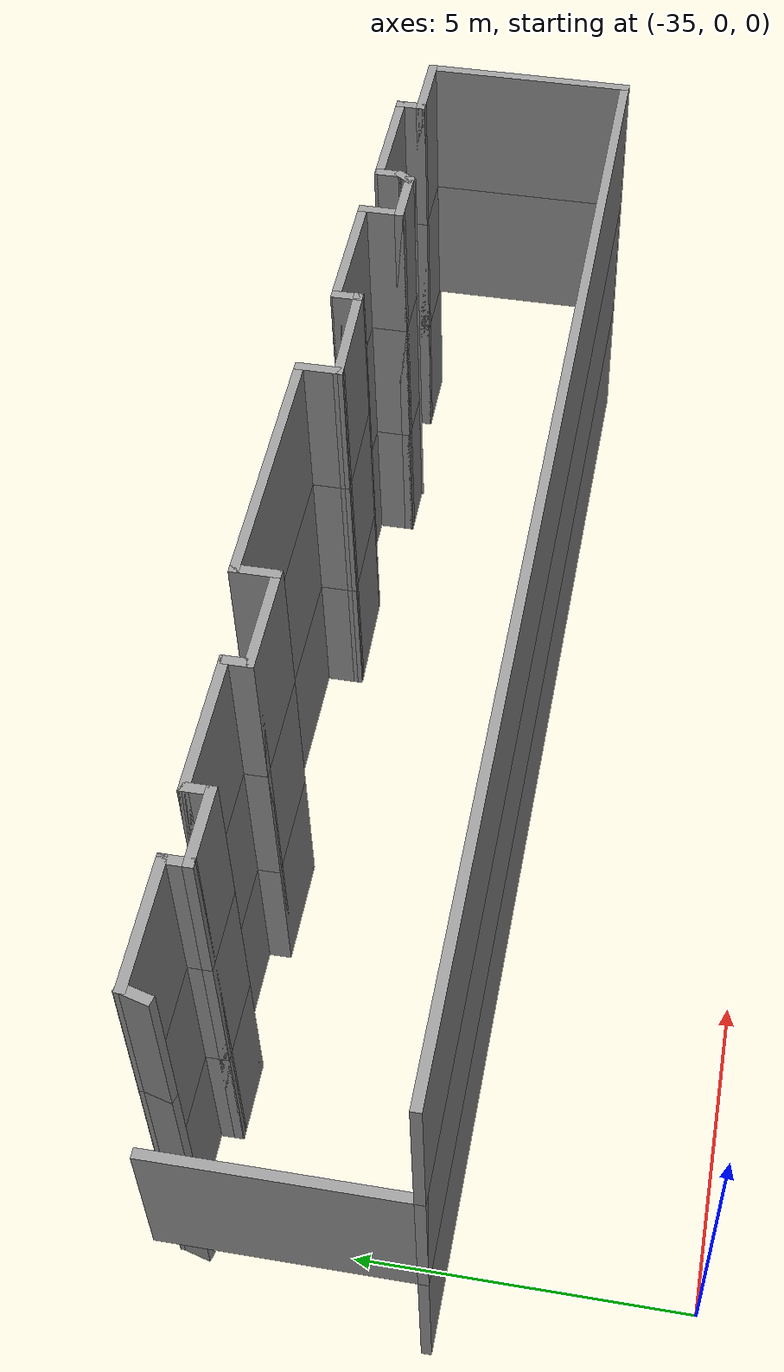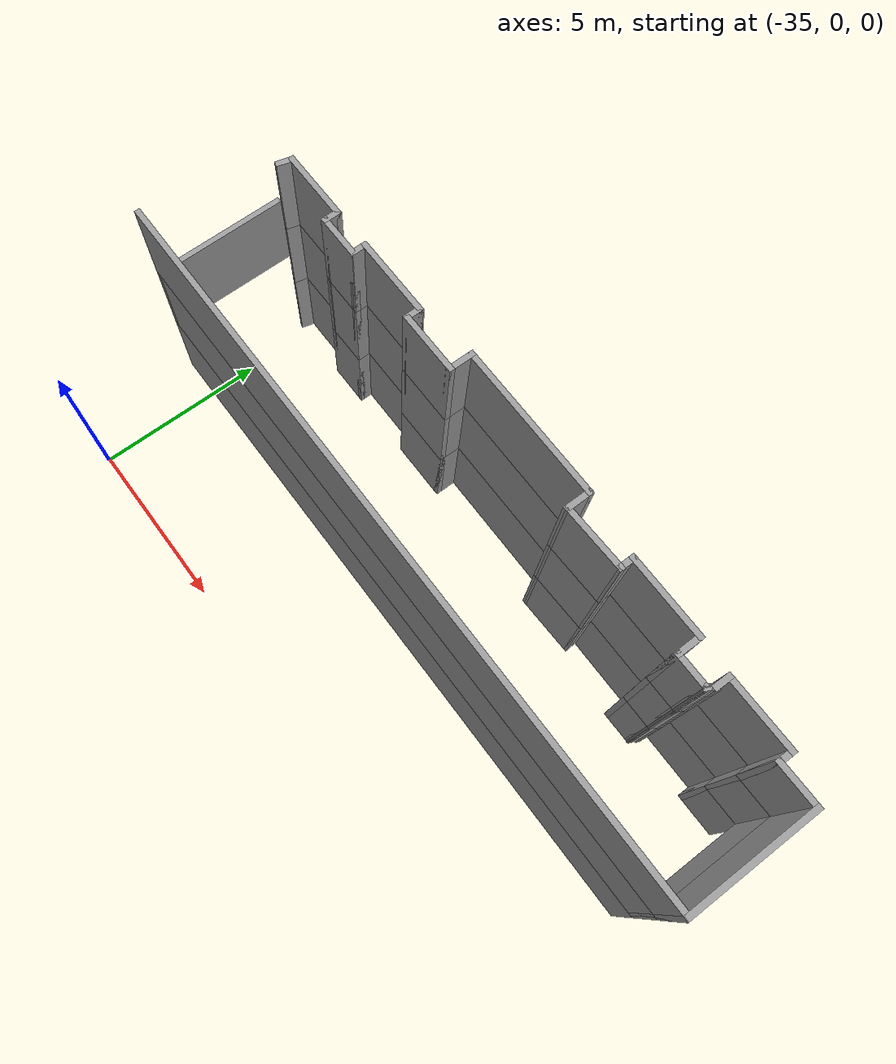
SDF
<sdf version="1.7">
 <model name="mapagazebo">
  <pose>-4.67869 9.01252 0 0 -0 0</pose>
  <link name="Wall_1080">
   <collision name="Wall_1080_Collision">
    <geometry><box><size>19.5 0.15 2.5</size></box></geometry>
    <pose>0 0 1.25 0 -0 0</pose>
   </collision>
   <visual name="Wall_1080_Visual">
    <pose>0 0 1.25 0 -0 0</pose>
    <geometry><box><size>19.5 0.15 2.5</size></box></geometry>
    <material>
     <script><uri>file://media/materials/scripts/gazebo.material</uri><name>Gazebo/Grey</name></script>
     <ambient>1 1 1 1</ambient>
    </material>
    <meta><layer>1</layer></meta>
   </visual>
   <pose>-21.7596 -5.30647 2.5 0 -0 0</pose>
  </link>
  <link name="Wall_1081">
   <collision name="Wall_1081_Collision">
    <geometry><box><size>3.5 0.15 2.5</size></box></geometry>
    <pose>0 0 1.25 0 -0 0</pose>
   </collision>
   <visual name="Wall_1081_Visual">
    <pose>0 0 1.25 0 -0 0</pose>
    <geometry><box><size>3.5 0.15 2.5</size></box></geometry>
    <material>
     <script><uri>file://media/materials/scripts/gazebo.material</uri><name>Gazebo/Grey</name></script>
     <ambient>1 1 1 1</ambient>
    </material>
    <meta><layer>1</layer></meta>
   </visual>
   <pose>-12.0846 -3.63147 2.5 0 -0 1.5708</pose>
  </link>
  <link name="Wall_1082">
   <collision name="Wall_1082_Collision">
    <geometry><box><size>1.25 0.15 2.5</size></box></geometry>
    <pose>0 0 1.25 0 -0 0</pose>
   </collision>
   <visual name="Wall_1082_Visual">
    <pose>0 0 1.25 0 -0 0</pose>
    <geometry><box><size>1.25 0.15 2.5</size></box></geometry>
    <material>
     <script><uri>file://media/materials/scripts/gazebo.material</uri><name>Gazebo/Grey</name></script>
     <ambient>1 1 1 1</ambient>
    </material>
    <meta><layer>1</layer></meta>
   </visual>
   <pose>-12.6346 -1.95647 2.5 0 -0 3.14159</pose>
  </link>
  <link name="Wall_1083">
   <collision name="Wall_1083_Collision">
    <geometry><box><size>0.5 0.15 2.5</size></box></geometry>
    <pose>0 0 1.25 0 -0 0</pose>
   </collision>
   <visual name="Wall_1083_Visual">
    <pose>0 0 1.25 0 -0 0</pose>
    <geometry><box><size>0.5 0.15 2.5</size></box></geometry>
    <material>
     <script><uri>file://media/materials/scripts/gazebo.material</uri><name>Gazebo/Grey</name></script>
     <ambient>1 1 1 1</ambient>
    </material>
    <meta><layer>1</layer></meta>
   </visual>
   <pose>-13.1846 -1.78147 2.5 0 -0 1.5708</pose>
  </link>
  <link name="Wall_1084">
   <collision name="Wall_1084_Collision">
    <geometry><box><size>2 0.15 2.5</size></box></geometry>
    <pose>0 0 1.25 0 -0 0</pose>
   </collision>
   <visual name="Wall_1084_Visual">
    <pose>0 0 1.25 0 -0 0</pose>
    <geometry><box><size>2 0.15 2.5</size></box></geometry>
    <material>
     <script><uri>file://media/materials/scripts/gazebo.material</uri><name>Gazebo/Grey</name></script>
     <ambient>1 1 1 1</ambient>
    </material>
    <meta><layer>1</layer></meta>
   </visual>
   <pose>-14.1096 -1.60647 2.5 0 -0 3.14159</pose>
  </link>
  <link name="Wall_1085">
   <collision name="Wall_1085_Collision">
    <geometry><box><size>0.5 0.15 2.5</size></box></geometry>
    <pose>0 0 1.25 0 -0 0</pose>
   </collision>
   <visual name="Wall_1085_Visual">
    <pose>0 0 1.25 0 -0 0</pose>
    <geometry><box><size>0.5 0.15 2.5</size></box></geometry>
    <material>
     <script><uri>file://media/materials/scripts/gazebo.material</uri><name>Gazebo/Grey</name></script>
     <ambient>1 1 1 1</ambient>
    </material>
    <meta><layer>1</layer></meta>
   </visual>
   <pose>-15.0346 -1.78147 2.5 0 -0 -1.5708</pose>
  </link>
  <link name="Wall_1086">
   <collision name="Wall_1086_Collision">
    <geometry><box><size>0.5 0.15 2.5</size></box></geometry>
    <pose>0 0 1.25 0 -0 0</pose>
   </collision>
   <visual name="Wall_1086_Visual">
    <pose>0 0 1.25 0 -0 0</pose>
    <geometry><box><size>0.5 0.15 2.5</size></box></geometry>
    <material>
     <script><uri>file://media/materials/scripts/gazebo.material</uri><name>Gazebo/Grey</name></script>
     <ambient>1 1 1 1</ambient>
    </material>
    <meta><layer>1</layer></meta>
   </visual>
   <pose>-18.0991 -1.70094 2.5 0 -0 1.5708</pose>
  </link>
  <link name="Wall_1087">
   <collision name="Wall_1087_Collision">
    <geometry><box><size>2.25 0.15 2.5</size></box></geometry>
    <pose>0 0 1.25 0 -0 0</pose>
   </collision>
   <visual name="Wall_1087_Visual">
    <pose>0 0 1.25 0 -0 0</pose>
    <geometry><box><size>2.25 0.15 2.5</size></box></geometry>
    <material>
     <script><uri>file://media/materials/scripts/gazebo.material</uri><name>Gazebo/Grey</name></script>
     <ambient>1 1 1 1</ambient>
    </material>
    <meta><layer>1</layer></meta>
   </visual>
   <pose>-17.0491 -1.52594 2.5 0 -0 0</pose>
  </link>
  <link name="Wall_1088">
   <collision name="Wall_1088_Collision">
    <geometry><box><size>0.75 0.15 2.5</size></box></geometry>
    <pose>0 0 1.25 0 -0 0</pose>
   </collision>
   <visual name="Wall_1088_Visual">
    <pose>0 0 1.25 0 -0 0</pose>
    <geometry><box><size>0.75 0.15 2.5</size></box></geometry>
    <material>
     <script><uri>file://media/materials/scripts/gazebo.material</uri><name>Gazebo/Grey</name></script>
     <ambient>1 1 1 1</ambient>
    </material>
    <meta><layer>1</layer></meta>
   </visual>
   <pose>-15.9991 -1.82594 2.5 0 -0 -1.5708</pose>
  </link>
  <link name="Wall_1089">
   <collision name="Wall_1089_Collision">
    <geometry><box><size>1 0.15 2.5</size></box></geometry>
    <pose>0 0 1.25 0 -0 0</pose>
   </collision>
   <visual name="Wall_1089_Visual">
    <pose>0 0 1.25 0 -0 0</pose>
    <geometry><box><size>1 0.15 2.5</size></box></geometry>
    <material>
     <script><uri>file://media/materials/scripts/gazebo.material</uri><name>Gazebo/Grey</name></script>
     <ambient>1 1 1 1</ambient>
    </material>
    <meta><layer>1</layer></meta>
   </visual>
   <pose>-15.5741 -2.12594 2.5 0 -0 0</pose>
  </link>
  <link name="Wall_1090">
   <collision name="Wall_1090_Collision">
    <geometry><box><size>0.15 0.15 2.5</size></box></geometry>
    <pose>0 0 1.25 0 -0 0</pose>
   </collision>
   <visual name="Wall_1090_Visual">
    <pose>0 0 1.25 0 -0 0</pose>
    <geometry><box><size>0.15 0.15 2.5</size></box></geometry>
    <material>
     <script><uri>file://media/materials/scripts/gazebo.material</uri><name>Gazebo/Grey</name></script>
     <ambient>1 1 1 1</ambient>
    </material>
    <meta><layer>1</layer></meta>
   </visual>
   <pose>-15.1491 -2.12594 2.5 0 -0 0</pose>
  </link>
  <link name="Wall_1091">
   <collision name="Wall_1091_Collision">
    <geometry><box><size>0.15 0.15 2.5</size></box></geometry>
    <pose>0 0 1.25 0 -0 0</pose>
   </collision>
   <visual name="Wall_1091_Visual">
    <pose>0 0 1.25 0 -0 0</pose>
    <geometry><box><size>0.15 0.15 2.5</size></box></geometry>
    <material>
     <script><uri>file://media/materials/scripts/gazebo.material</uri><name>Gazebo/Grey</name></script>
     <ambient>1 1 1 1</ambient>
    </material>
    <meta><layer>1</layer></meta>
   </visual>
   <pose>-15.1491 -2.12594 2.5 0 -0 0</pose>
  </link>
  <link name="Wall_1092">
   <collision name="Wall_1092_Collision">
    <geometry><box><size>0.354525 0.15 2.5</size></box></geometry>
    <pose>0 0 1.25 0 -0 0</pose>
   </collision>
   <visual name="Wall_1092_Visual">
    <pose>0 0 1.25 0 -0 0</pose>
    <geometry><box><size>0.354525 0.15 2.5</size></box></geometry>
    <material>
     <script><uri>file://media/materials/scripts/gazebo.material</uri><name>Gazebo/Grey</name></script>
     <ambient>1 1 1 1</ambient>
    </material>
    <meta><layer>1</layer></meta>
   </visual>
   <pose>-15.0918 -2.04121 2.5 0 -0 0.976587</pose>
  </link>
  <link name="Wall_1093">
   <collision name="Wall_1093_Collision">
    <geometry><box><size>0.354525 0.15 2.5</size></box></geometry>
    <pose>0 0 1.25 0 -0 0</pose>
   </collision>
   <visual name="Wall_1093_Visual">
    <pose>0 0 1.25 0 -0 0</pose>
    <geometry><box><size>0.354525 0.15 2.5</size></box></geometry>
    <material>
     <script><uri>file://media/materials/scripts/gazebo.material</uri><name>Gazebo/Grey</name></script>
     <ambient>1 1 1 1</ambient>
    </material>
    <meta><layer>1</layer></meta>
   </visual>
   <pose>-15.0918 -2.04121 2.5 0 -0 -2.165</pose>
  </link>
  <link name="Wall_1094">
   <collision name="Wall_1094_Collision">
    <geometry><box><size>0.5 0.15 2.5</size></box></geometry>
    <pose>0 0 1.25 0 -0 0</pose>
   </collision>
   <visual name="Wall_1094_Visual">
    <pose>0 0 1.25 0 -0 0</pose>
    <geometry><box><size>0.5 0.15 2.5</size></box></geometry>
    <material>
     <script><uri>file://media/materials/scripts/gazebo.material</uri><name>Gazebo/Grey</name></script>
     <ambient>1 1 1 1</ambient>
    </material>
    <meta><layer>1</layer></meta>
   </visual>
   <pose>-30.5677 -1.73765 2.5 0 -0 1.309</pose>
  </link>
  <link name="Wall_1095">
   <collision name="Wall_1095_Collision">
    <geometry><box><size>2 0.15 2.5</size></box></geometry>
    <pose>0 0 1.25 0 -0 0</pose>
   </collision>
   <visual name="Wall_1095_Visual">
    <pose>0 0 1.25 0 -0 0</pose>
    <geometry><box><size>2 0.15 2.5</size></box></geometry>
    <material>
     <script><uri>file://media/materials/scripts/gazebo.material</uri><name>Gazebo/Grey</name></script>
     <ambient>1 1 1 1</ambient>
    </material>
    <meta><layer>1</layer></meta>
   </visual>
   <pose>-29.5974 -1.56862 2.5 0 -0 0</pose>
  </link>
  <link name="Wall_1096">
   <collision name="Wall_1096_Collision">
    <geometry><box><size>0.5 0.15 2.5</size></box></geometry>
    <pose>0 0 1.25 0 -0 0</pose>
   </collision>
   <visual name="Wall_1096_Visual">
    <pose>0 0 1.25 0 -0 0</pose>
    <geometry><box><size>0.5 0.15 2.5</size></box></geometry>
    <material>
     <script><uri>file://media/materials/scripts/gazebo.material</uri><name>Gazebo/Grey</name></script>
     <ambient>1 1 1 1</ambient>
    </material>
    <meta><layer>1</layer></meta>
   </visual>
   <pose>-28.6724 -1.74362 2.5 0 -0 -1.5708</pose>
  </link>
  <link name="Wall_1097">
   <collision name="Wall_1097_Collision">
    <geometry><box><size>1.25 0.15 2.5</size></box></geometry>
    <pose>0 0 1.25 0 -0 0</pose>
   </collision>
   <visual name="Wall_1097_Visual">
    <pose>0 0 1.25 0 -0 0</pose>
    <geometry><box><size>1.25 0.15 2.5</size></box></geometry>
    <material>
     <script><uri>file://media/materials/scripts/gazebo.material</uri><name>Gazebo/Grey</name></script>
     <ambient>1 1 1 1</ambient>
    </material>
    <meta><layer>1</layer></meta>
   </visual>
   <pose>-28.1224 -1.91862 2.5 0 -0 0</pose>
  </link>
  <link name="Wall_1098">
   <collision name="Wall_1098_Collision">
    <geometry><box><size>0.5 0.15 2.5</size></box></geometry>
    <pose>0 0 1.25 0 -0 0</pose>
   </collision>
   <visual name="Wall_1098_Visual">
    <pose>0 0 1.25 0 -0 0</pose>
    <geometry><box><size>0.5 0.15 2.5</size></box></geometry>
    <material>
     <script><uri>file://media/materials/scripts/gazebo.material</uri><name>Gazebo/Grey</name></script>
     <ambient>1 1 1 1</ambient>
    </material>
    <meta><layer>1</layer></meta>
   </visual>
   <pose>-27.5724 -1.74362 2.5 0 -0 1.5708</pose>
  </link>
  <link name="Wall_1099">
   <collision name="Wall_1099_Collision">
    <geometry><box><size>2.25 0.15 2.5</size></box></geometry>
    <pose>0 0 1.25 0 -0 0</pose>
   </collision>
   <visual name="Wall_1099_Visual">
    <pose>0 0 1.25 0 -0 0</pose>
    <geometry><box><size>2.25 0.15 2.5</size></box></geometry>
    <material>
     <script><uri>file://media/materials/scripts/gazebo.material</uri><name>Gazebo/Grey</name></script>
     <ambient>1 1 1 1</ambient>
    </material>
    <meta><layer>1</layer></meta>
   </visual>
   <pose>-26.5224 -1.56862 2.5 0 -0 0</pose>
  </link>
  <link name="Wall_1100">
   <collision name="Wall_1100_Collision">
    <geometry><box><size>0.5 0.15 2.5</size></box></geometry>
    <pose>0 0 1.25 0 -0 0</pose>
   </collision>
   <visual name="Wall_1100_Visual">
    <pose>0 0 1.25 0 -0 0</pose>
    <geometry><box><size>0.5 0.15 2.5</size></box></geometry>
    <material>
     <script><uri>file://media/materials/scripts/gazebo.material</uri><name>Gazebo/Grey</name></script>
     <ambient>1 1 1 1</ambient>
    </material>
    <meta><layer>1</layer></meta>
   </visual>
   <pose>-25.4724 -1.74362 2.5 0 -0 -1.5708</pose>
  </link>
  <link name="Wall_1101">
   <collision name="Wall_1101_Collision">
    <geometry><box><size>1.75 0.15 2.5</size></box></geometry>
    <pose>0 0 1.25 0 -0 0</pose>
   </collision>
   <visual name="Wall_1101_Visual">
    <pose>0 0 1.25 0 -0 0</pose>
    <geometry><box><size>1.75 0.15 2.5</size></box></geometry>
    <material>
     <script><uri>file://media/materials/scripts/gazebo.material</uri><name>Gazebo/Grey</name></script>
     <ambient>1 1 1 1</ambient>
    </material>
    <meta><layer>1</layer></meta>
   </visual>
   <pose>-24.6724 -1.91862 2.5 0 -0 0</pose>
  </link>
  <link name="Wall_1102">
   <collision name="Wall_1102_Collision">
    <geometry><box><size>0.75 0.15 2.5</size></box></geometry>
    <pose>0 0 1.25 0 -0 0</pose>
   </collision>
   <visual name="Wall_1102_Visual">
    <pose>0 0 1.25 0 -0 0</pose>
    <geometry><box><size>0.75 0.15 2.5</size></box></geometry>
    <material>
     <script><uri>file://media/materials/scripts/gazebo.material</uri><name>Gazebo/Grey</name></script>
     <ambient>1 1 1 1</ambient>
    </material>
    <meta><layer>1</layer></meta>
   </visual>
   <pose>-23.8724 -1.61862 2.5 0 -0 1.5708</pose>
  </link>
  <link name="Wall_1103">
   <collision name="Wall_1103_Collision">
    <geometry><box><size>4.25 0.15 2.5</size></box></geometry>
    <pose>0 0 1.25 0 -0 0</pose>
   </collision>
   <visual name="Wall_1103_Visual">
    <pose>0 0 1.25 0 -0 0</pose>
    <geometry><box><size>4.25 0.15 2.5</size></box></geometry>
    <material>
     <script><uri>file://media/materials/scripts/gazebo.material</uri><name>Gazebo/Grey</name></script>
     <ambient>1 1 1 1</ambient>
    </material>
    <meta><layer>1</layer></meta>
   </visual>
   <pose>-21.8224 -1.31862 2.5 0 -0 0</pose>
  </link>
  <link name="Wall_1104">
   <collision name="Wall_1104_Collision">
    <geometry><box><size>0.75 0.15 2.5</size></box></geometry>
    <pose>0 0 1.25 0 -0 0</pose>
   </collision>
   <visual name="Wall_1104_Visual">
    <pose>0 0 1.25 0 -0 0</pose>
    <geometry><box><size>0.75 0.15 2.5</size></box></geometry>
    <material>
     <script><uri>file://media/materials/scripts/gazebo.material</uri><name>Gazebo/Grey</name></script>
     <ambient>1 1 1 1</ambient>
    </material>
    <meta><layer>1</layer></meta>
   </visual>
   <pose>-19.7724 -1.61862 2.5 0 -0 -1.5708</pose>
  </link>
  <link name="Wall_1105">
   <collision name="Wall_1105_Collision">
    <geometry><box><size>1.82381 0.15 2.5</size></box></geometry>
    <pose>0 0 1.25 0 -0 0</pose>
   </collision>
   <visual name="Wall_1105_Visual">
    <pose>0 0 1.25 0 -0 0</pose>
    <geometry><box><size>1.82381 0.15 2.5</size></box></geometry>
    <material>
     <script><uri>file://media/materials/scripts/gazebo.material</uri><name>Gazebo/Grey</name></script>
     <ambient>1 1 1 1</ambient>
    </material>
    <meta><layer>1</layer></meta>
   </visual>
   <pose>-18.9357 -1.89728 2.5 0 -0 0.0255</pose>
  </link>
  <link name="Wall_1106">
   <collision name="Wall_1106_Collision">
    <geometry><box><size>0.16 0.15 2.5</size></box></geometry>
    <pose>0 0 1.25 0 -0 0</pose>
   </collision>
   <visual name="Wall_1106_Visual">
    <pose>0 0 1.25 0 -0 0</pose>
    <geometry><box><size>0.16 0.15 2.5</size></box></geometry>
    <material>
     <script><uri>file://media/materials/scripts/gazebo.material</uri><name>Gazebo/Grey</name></script>
     <ambient>1 1 1 1</ambient>
    </material>
    <meta><layer>1</layer></meta>
   </visual>
   <pose>-18.0941 -1.87594 2.5 0 -0 0</pose>
  </link>
  <link name="Wall_1704">
   <collision name="Wall_1704_Collision">
    <geometry><box><size>19.5 0.15 2.5</size></box></geometry>
    <pose>0 0 1.25 0 -0 0</pose>
   </collision>
   <visual name="Wall_1704_Visual">
    <pose>0 0 1.25 0 -0 0</pose>
    <geometry><box><size>19.5 0.15 2.5</size></box></geometry>
    <material>
     <script><uri>file://media/materials/scripts/gazebo.material</uri><name>Gazebo/Grey</name></script>
     <ambient>1 1 1 1</ambient>
    </material>
    <meta><layer>2</layer></meta>
   </visual>
   <pose>-21.7596 -5.30647 5 0 -0 0</pose>
  </link>
  <link name="Wall_1705">
   <collision name="Wall_1705_Collision">
    <geometry><box><size>3.5 0.15 2.5</size></box></geometry>
    <pose>0 0 1.25 0 -0 0</pose>
   </collision>
   <visual name="Wall_1705_Visual">
    <pose>0 0 1.25 0 -0 0</pose>
    <geometry><box><size>3.5 0.15 2.5</size></box></geometry>
    <material>
     <script><uri>file://media/materials/scripts/gazebo.material</uri><name>Gazebo/Grey</name></script>
     <ambient>1 1 1 1</ambient>
    </material>
    <meta><layer>2</layer></meta>
   </visual>
   <pose>-12.0846 -3.63147 5 0 -0 1.5708</pose>
  </link>
  <link name="Wall_1706">
   <collision name="Wall_1706_Collision">
    <geometry><box><size>1.25 0.15 2.5</size></box></geometry>
    <pose>0 0 1.25 0 -0 0</pose>
   </collision>
   <visual name="Wall_1706_Visual">
    <pose>0 0 1.25 0 -0 0</pose>
    <geometry><box><size>1.25 0.15 2.5</size></box></geometry>
    <material>
     <script><uri>file://media/materials/scripts/gazebo.material</uri><name>Gazebo/Grey</name></script>
     <ambient>1 1 1 1</ambient>
    </material>
    <meta><layer>2</layer></meta>
   </visual>
   <pose>-12.6346 -1.95647 5 0 -0 3.14159</pose>
  </link>
  <link name="Wall_1707">
   <collision name="Wall_1707_Collision">
    <geometry><box><size>0.5 0.15 2.5</size></box></geometry>
    <pose>0 0 1.25 0 -0 0</pose>
   </collision>
   <visual name="Wall_1707_Visual">
    <pose>0 0 1.25 0 -0 0</pose>
    <geometry><box><size>0.5 0.15 2.5</size></box></geometry>
    <material>
     <script><uri>file://media/materials/scripts/gazebo.material</uri><name>Gazebo/Grey</name></script>
     <ambient>1 1 1 1</ambient>
    </material>
    <meta><layer>2</layer></meta>
   </visual>
   <pose>-13.1846 -1.78147 5 0 -0 1.5708</pose>
  </link>
  <link name="Wall_1708">
   <collision name="Wall_1708_Collision">
    <geometry><box><size>2 0.15 2.5</size></box></geometry>
    <pose>0 0 1.25 0 -0 0</pose>
   </collision>
   <visual name="Wall_1708_Visual">
    <pose>0 0 1.25 0 -0 0</pose>
    <geometry><box><size>2 0.15 2.5</size></box></geometry>
    <material>
     <script><uri>file://media/materials/scripts/gazebo.material</uri><name>Gazebo/Grey</name></script>
     <ambient>1 1 1 1</ambient>
    </material>
    <meta><layer>2</layer></meta>
   </visual>
   <pose>-14.1096 -1.60647 5 0 -0 3.14159</pose>
  </link>
  <link name="Wall_1709">
   <collision name="Wall_1709_Collision">
    <geometry><box><size>0.5 0.15 2.5</size></box></geometry>
    <pose>0 0 1.25 0 -0 0</pose>
   </collision>
   <visual name="Wall_1709_Visual">
    <pose>0 0 1.25 0 -0 0</pose>
    <geometry><box><size>0.5 0.15 2.5</size></box></geometry>
    <material>
     <script><uri>file://media/materials/scripts/gazebo.material</uri><name>Gazebo/Grey</name></script>
     <ambient>1 1 1 1</ambient>
    </material>
    <meta><layer>2</layer></meta>
   </visual>
   <pose>-15.0346 -1.78147 5 0 -0 -1.5708</pose>
  </link>
  <link name="Wall_1710">
   <collision name="Wall_1710_Collision">
    <geometry><box><size>0.5 0.15 2.5</size></box></geometry>
    <pose>0 0 1.25 0 -0 0</pose>
   </collision>
   <visual name="Wall_1710_Visual">
    <pose>0 0 1.25 0 -0 0</pose>
    <geometry><box><size>0.5 0.15 2.5</size></box></geometry>
    <material>
     <script><uri>file://media/materials/scripts/gazebo.material</uri><name>Gazebo/Grey</name></script>
     <ambient>1 1 1 1</ambient>
    </material>
    <meta><layer>2</layer></meta>
   </visual>
   <pose>-18.0991 -1.70094 5 0 -0 1.5708</pose>
  </link>
  <link name="Wall_1711">
   <collision name="Wall_1711_Collision">
    <geometry><box><size>2.25 0.15 2.5</size></box></geometry>
    <pose>0 0 1.25 0 -0 0</pose>
   </collision>
   <visual name="Wall_1711_Visual">
    <pose>0 0 1.25 0 -0 0</pose>
    <geometry><box><size>2.25 0.15 2.5</size></box></geometry>
    <material>
     <script><uri>file://media/materials/scripts/gazebo.material</uri><name>Gazebo/Grey</name></script>
     <ambient>1 1 1 1</ambient>
    </material>
    <meta><layer>2</layer></meta>
   </visual>
   <pose>-17.0491 -1.52594 5 0 -0 0</pose>
  </link>
  <link name="Wall_1712">
   <collision name="Wall_1712_Collision">
    <geometry><box><size>0.75 0.15 2.5</size></box></geometry>
    <pose>0 0 1.25 0 -0 0</pose>
   </collision>
   <visual name="Wall_1712_Visual">
    <pose>0 0 1.25 0 -0 0</pose>
    <geometry><box><size>0.75 0.15 2.5</size></box></geometry>
    <material>
     <script><uri>file://media/materials/scripts/gazebo.material</uri><name>Gazebo/Grey</name></script>
     <ambient>1 1 1 1</ambient>
    </material>
    <meta><layer>2</layer></meta>
   </visual>
   <pose>-15.9991 -1.82594 5 0 -0 -1.5708</pose>
  </link>
  <link name="Wall_1713">
   <collision name="Wall_1713_Collision">
    <geometry><box><size>1 0.15 2.5</size></box></geometry>
    <pose>0 0 1.25 0 -0 0</pose>
   </collision>
   <visual name="Wall_1713_Visual">
    <pose>0 0 1.25 0 -0 0</pose>
    <geometry><box><size>1 0.15 2.5</size></box></geometry>
    <material>
     <script><uri>file://media/materials/scripts/gazebo.material</uri><name>Gazebo/Grey</name></script>
     <ambient>1 1 1 1</ambient>
    </material>
    <meta><layer>2</layer></meta>
   </visual>
   <pose>-15.5741 -2.12594 5 0 -0 0</pose>
  </link>
  <link name="Wall_1714">
   <collision name="Wall_1714_Collision">
    <geometry><box><size>0.15 0.15 2.5</size></box></geometry>
    <pose>0 0 1.25 0 -0 0</pose>
   </collision>
   <visual name="Wall_1714_Visual">
    <pose>0 0 1.25 0 -0 0</pose>
    <geometry><box><size>0.15 0.15 2.5</size></box></geometry>
    <material>
     <script><uri>file://media/materials/scripts/gazebo.material</uri><name>Gazebo/Grey</name></script>
     <ambient>1 1 1 1</ambient>
    </material>
    <meta><layer>2</layer></meta>
   </visual>
   <pose>-15.1491 -2.12594 5 0 -0 0</pose>
  </link>
  <link name="Wall_1715">
   <collision name="Wall_1715_Collision">
    <geometry><box><size>0.15 0.15 2.5</size></box></geometry>
    <pose>0 0 1.25 0 -0 0</pose>
   </collision>
   <visual name="Wall_1715_Visual">
    <pose>0 0 1.25 0 -0 0</pose>
    <geometry><box><size>0.15 0.15 2.5</size></box></geometry>
    <material>
     <script><uri>file://media/materials/scripts/gazebo.material</uri><name>Gazebo/Grey</name></script>
     <ambient>1 1 1 1</ambient>
    </material>
    <meta><layer>2</layer></meta>
   </visual>
   <pose>-15.1491 -2.12594 5 0 -0 0</pose>
  </link>
  <link name="Wall_1716">
   <collision name="Wall_1716_Collision">
    <geometry><box><size>0.354525 0.15 2.5</size></box></geometry>
    <pose>0 0 1.25 0 -0 0</pose>
   </collision>
   <visual name="Wall_1716_Visual">
    <pose>0 0 1.25 0 -0 0</pose>
    <geometry><box><size>0.354525 0.15 2.5</size></box></geometry>
    <material>
     <script><uri>file://media/materials/scripts/gazebo.material</uri><name>Gazebo/Grey</name></script>
     <ambient>1 1 1 1</ambient>
    </material>
    <meta><layer>2</layer></meta>
   </visual>
   <pose>-15.0918 -2.04121 5 0 -0 0.976587</pose>
  </link>
  <link name="Wall_1717">
   <collision name="Wall_1717_Collision">
    <geometry><box><size>0.354525 0.15 2.5</size></box></geometry>
    <pose>0 0 1.25 0 -0 0</pose>
   </collision>
   <visual name="Wall_1717_Visual">
    <pose>0 0 1.25 0 -0 0</pose>
    <geometry><box><size>0.354525 0.15 2.5</size></box></geometry>
    <material>
     <script><uri>file://media/materials/scripts/gazebo.material</uri><name>Gazebo/Grey</name></script>
     <ambient>1 1 1 1</ambient>
    </material>
    <meta><layer>2</layer></meta>
   </visual>
   <pose>-15.0918 -2.04121 5 0 -0 -2.165</pose>
  </link>
  <link name="Wall_1718">
   <collision name="Wall_1718_Collision">
    <geometry><box><size>0.5 0.15 2.5</size></box></geometry>
    <pose>0 0 1.25 0 -0 0</pose>
   </collision>
   <visual name="Wall_1718_Visual">
    <pose>0 0 1.25 0 -0 0</pose>
    <geometry><box><size>0.5 0.15 2.5</size></box></geometry>
    <material>
     <script><uri>file://media/materials/scripts/gazebo.material</uri><name>Gazebo/Grey</name></script>
     <ambient>1 1 1 1</ambient>
    </material>
    <meta><layer>2</layer></meta>
   </visual>
   <pose>-30.5677 -1.73765 5 0 -0 1.309</pose>
  </link>
  <link name="Wall_1719">
   <collision name="Wall_1719_Collision">
    <geometry><box><size>2 0.15 2.5</size></box></geometry>
    <pose>0 0 1.25 0 -0 0</pose>
   </collision>
   <visual name="Wall_1719_Visual">
    <pose>0 0 1.25 0 -0 0</pose>
    <geometry><box><size>2 0.15 2.5</size></box></geometry>
    <material>
     <script><uri>file://media/materials/scripts/gazebo.material</uri><name>Gazebo/Grey</name></script>
     <ambient>1 1 1 1</ambient>
    </material>
    <meta><layer>2</layer></meta>
   </visual>
   <pose>-29.5974 -1.56862 5 0 -0 0</pose>
  </link>
  <link name="Wall_1720">
   <collision name="Wall_1720_Collision">
    <geometry><box><size>0.5 0.15 2.5</size></box></geometry>
    <pose>0 0 1.25 0 -0 0</pose>
   </collision>
   <visual name="Wall_1720_Visual">
    <pose>0 0 1.25 0 -0 0</pose>
    <geometry><box><size>0.5 0.15 2.5</size></box></geometry>
    <material>
     <script><uri>file://media/materials/scripts/gazebo.material</uri><name>Gazebo/Grey</name></script>
     <ambient>1 1 1 1</ambient>
    </material>
    <meta><layer>2</layer></meta>
   </visual>
   <pose>-28.6724 -1.74362 5 0 -0 -1.5708</pose>
  </link>
  <link name="Wall_1721">
   <collision name="Wall_1721_Collision">
    <geometry><box><size>1.25 0.15 2.5</size></box></geometry>
    <pose>0 0 1.25 0 -0 0</pose>
   </collision>
   <visual name="Wall_1721_Visual">
    <pose>0 0 1.25 0 -0 0</pose>
    <geometry><box><size>1.25 0.15 2.5</size></box></geometry>
    <material>
     <script><uri>file://media/materials/scripts/gazebo.material</uri><name>Gazebo/Grey</name></script>
     <ambient>1 1 1 1</ambient>
    </material>
    <meta><layer>2</layer></meta>
   </visual>
   <pose>-28.1224 -1.91862 5 0 -0 0</pose>
  </link>
  <link name="Wall_1722">
   <collision name="Wall_1722_Collision">
    <geometry><box><size>0.5 0.15 2.5</size></box></geometry>
    <pose>0 0 1.25 0 -0 0</pose>
   </collision>
   <visual name="Wall_1722_Visual">
    <pose>0 0 1.25 0 -0 0</pose>
    <geometry><box><size>0.5 0.15 2.5</size></box></geometry>
    <material>
     <script><uri>file://media/materials/scripts/gazebo.material</uri><name>Gazebo/Grey</name></script>
     <ambient>1 1 1 1</ambient>
    </material>
    <meta><layer>2</layer></meta>
   </visual>
   <pose>-27.5724 -1.74362 5 0 -0 1.5708</pose>
  </link>
  <link name="Wall_1723">
   <collision name="Wall_1723_Collision">
    <geometry><box><size>2.25 0.15 2.5</size></box></geometry>
    <pose>0 0 1.25 0 -0 0</pose>
   </collision>
   <visual name="Wall_1723_Visual">
    <pose>0 0 1.25 0 -0 0</pose>
    <geometry><box><size>2.25 0.15 2.5</size></box></geometry>
    <material>
     <script><uri>file://media/materials/scripts/gazebo.material</uri><name>Gazebo/Grey</name></script>
     <ambient>1 1 1 1</ambient>
    </material>
    <meta><layer>2</layer></meta>
   </visual>
   <pose>-26.5224 -1.56862 5 0 -0 0</pose>
  </link>
  <link name="Wall_1724">
   <collision name="Wall_1724_Collision">
    <geometry><box><size>0.5 0.15 2.5</size></box></geometry>
    <pose>0 0 1.25 0 -0 0</pose>
   </collision>
   <visual name="Wall_1724_Visual">
    <pose>0 0 1.25 0 -0 0</pose>
    <geometry><box><size>0.5 0.15 2.5</size></box></geometry>
    <material>
     <script><uri>file://media/materials/scripts/gazebo.material</uri><name>Gazebo/Grey</name></script>
     <ambient>1 1 1 1</ambient>
    </material>
    <meta><layer>2</layer></meta>
   </visual>
   <pose>-25.4724 -1.74362 5 0 -0 -1.5708</pose>
  </link>
  <link name="Wall_1725">
   <collision name="Wall_1725_Collision">
    <geometry><box><size>1.75 0.15 2.5</size></box></geometry>
    <pose>0 0 1.25 0 -0 0</pose>
   </collision>
   <visual name="Wall_1725_Visual">
    <pose>0 0 1.25 0 -0 0</pose>
    <geometry><box><size>1.75 0.15 2.5</size></box></geometry>
    <material>
     <script><uri>file://media/materials/scripts/gazebo.material</uri><name>Gazebo/Grey</name></script>
     <ambient>1 1 1 1</ambient>
    </material>
    <meta><layer>2</layer></meta>
   </visual>
   <pose>-24.6724 -1.91862 5 0 -0 0</pose>
  </link>
  <link name="Wall_1726">
   <collision name="Wall_1726_Collision">
    <geometry><box><size>0.75 0.15 2.5</size></box></geometry>
    <pose>0 0 1.25 0 -0 0</pose>
   </collision>
   <visual name="Wall_1726_Visual">
    <pose>0 0 1.25 0 -0 0</pose>
    <geometry><box><size>0.75 0.15 2.5</size></box></geometry>
    <material>
     <script><uri>file://media/materials/scripts/gazebo.material</uri><name>Gazebo/Grey</name></script>
     <ambient>1 1 1 1</ambient>
    </material>
    <meta><layer>2</layer></meta>
   </visual>
   <pose>-23.8724 -1.61862 5 0 -0 1.5708</pose>
  </link>
  <link name="Wall_1727">
   <collision name="Wall_1727_Collision">
    <geometry><box><size>4.25 0.15 2.5</size></box></geometry>
    <pose>0 0 1.25 0 -0 0</pose>
   </collision>
   <visual name="Wall_1727_Visual">
    <pose>0 0 1.25 0 -0 0</pose>
    <geometry><box><size>4.25 0.15 2.5</size></box></geometry>
    <material>
     <script><uri>file://media/materials/scripts/gazebo.material</uri><name>Gazebo/Grey</name></script>
     <ambient>1 1 1 1</ambient>
    </material>
    <meta><layer>2</layer></meta>
   </visual>
   <pose>-21.8224 -1.31862 5 0 -0 0</pose>
  </link>
  <link name="Wall_1728">
   <collision name="Wall_1728_Collision">
    <geometry><box><size>0.75 0.15 2.5</size></box></geometry>
    <pose>0 0 1.25 0 -0 0</pose>
   </collision>
   <visual name="Wall_1728_Visual">
    <pose>0 0 1.25 0 -0 0</pose>
    <geometry><box><size>0.75 0.15 2.5</size></box></geometry>
    <material>
     <script><uri>file://media/materials/scripts/gazebo.material</uri><name>Gazebo/Grey</name></script>
     <ambient>1 1 1 1</ambient>
    </material>
    <meta><layer>2</layer></meta>
   </visual>
   <pose>-19.7724 -1.61862 5 0 -0 -1.5708</pose>
  </link>
  <link name="Wall_1729">
   <collision name="Wall_1729_Collision">
    <geometry><box><size>1.82381 0.15 2.5</size></box></geometry>
    <pose>0 0 1.25 0 -0 0</pose>
   </collision>
   <visual name="Wall_1729_Visual">
    <pose>0 0 1.25 0 -0 0</pose>
    <geometry><box><size>1.82381 0.15 2.5</size></box></geometry>
    <material>
     <script><uri>file://media/materials/scripts/gazebo.material</uri><name>Gazebo/Grey</name></script>
     <ambient>1 1 1 1</ambient>
    </material>
    <meta><layer>2</layer></meta>
   </visual>
   <pose>-18.9357 -1.89728 5 0 -0 0.0255</pose>
  </link>
  <link name="Wall_1730">
   <collision name="Wall_1730_Collision">
    <geometry><box><size>0.16 0.15 2.5</size></box></geometry>
    <pose>0 0 1.25 0 -0 0</pose>
   </collision>
   <visual name="Wall_1730_Visual">
    <pose>0 0 1.25 0 -0 0</pose>
    <geometry><box><size>0.16 0.15 2.5</size></box></geometry>
    <material>
     <script><uri>file://media/materials/scripts/gazebo.material</uri><name>Gazebo/Grey</name></script>
     <ambient>1 1 1 1</ambient>
    </material>
    <meta><layer>2</layer></meta>
   </visual>
   <pose>-18.0941 -1.87594 5 0 -0 0</pose>
  </link>
  <link name="Wall_376">
   <collision name="Wall_376_Collision">
    <geometry><box><size>19.5 0.15 2.5</size></box></geometry>
    <pose>0 0 1.25 0 -0 0</pose>
   </collision>
   <visual name="Wall_376_Visual">
    <pose>0 0 1.25 0 -0 0</pose>
    <geometry><box><size>19.5 0.15 2.5</size></box></geometry>
    <material>
     <script><uri>file://media/materials/scripts/gazebo.material</uri><name>Gazebo/Grey</name></script>
     <ambient>1 1 1 1</ambient>
    </material>
    <meta><layer>0</layer></meta>
   </visual>
   <pose>-21.7596 -5.30647 0 0 -0 0</pose>
  </link>
  <link name="Wall_378">
   <collision name="Wall_378_Collision">
    <geometry><box><size>1.25 0.15 2.5</size></box></geometry>
    <pose>0 0 1.25 0 -0 0</pose>
   </collision>
   <visual name="Wall_378_Visual">
    <pose>0 0 1.25 0 -0 0</pose>
    <geometry><box><size>1.25 0.15 2.5</size></box></geometry>
    <material>
     <script><uri>file://media/materials/scripts/gazebo.material</uri><name>Gazebo/Grey</name></script>
     <ambient>1 1 1 1</ambient>
    </material>
    <meta><layer>0</layer></meta>
   </visual>
   <pose>-12.6346 -1.95647 0 0 -0 3.14159</pose>
  </link>
  <link name="Wall_379">
   <collision name="Wall_379_Collision">
    <geometry><box><size>0.5 0.15 2.5</size></box></geometry>
    <pose>0 0 1.25 0 -0 0</pose>
   </collision>
   <visual name="Wall_379_Visual">
    <pose>0 0 1.25 0 -0 0</pose>
    <geometry><box><size>0.5 0.15 2.5</size></box></geometry>
    <material>
     <script><uri>file://media/materials/scripts/gazebo.material</uri><name>Gazebo/Grey</name></script>
     <ambient>1 1 1 1</ambient>
    </material>
    <meta><layer>0</layer></meta>
   </visual>
   <pose>-13.1846 -1.78147 0 0 -0 1.5708</pose>
  </link>
  <link name="Wall_380">
   <collision name="Wall_380_Collision">
    <geometry><box><size>2 0.15 2.5</size></box></geometry>
    <pose>0 0 1.25 0 -0 0</pose>
   </collision>
   <visual name="Wall_380_Visual">
    <pose>0 0 1.25 0 -0 0</pose>
    <geometry><box><size>2 0.15 2.5</size></box></geometry>
    <material>
     <script><uri>file://media/materials/scripts/gazebo.material</uri><name>Gazebo/Grey</name></script>
     <ambient>1 1 1 1</ambient>
    </material>
    <meta><layer>0</layer></meta>
   </visual>
   <pose>-14.1096 -1.60647 0 0 -0 3.14159</pose>
  </link>
  <link name="Wall_381">
   <collision name="Wall_381_Collision">
    <geometry><box><size>0.5 0.15 2.5</size></box></geometry>
    <pose>0 0 1.25 0 -0 0</pose>
   </collision>
   <visual name="Wall_381_Visual">
    <pose>0 0 1.25 0 -0 0</pose>
    <geometry><box><size>0.5 0.15 2.5</size></box></geometry>
    <material>
     <script><uri>file://media/materials/scripts/gazebo.material</uri><name>Gazebo/Grey</name></script>
     <ambient>1 1 1 1</ambient>
    </material>
    <meta><layer>0</layer></meta>
   </visual>
   <pose>-15.0346 -1.78147 0 0 -0 -1.5708</pose>
  </link>
  <link name="Wall_388">
   <collision name="Wall_388_Collision">
    <geometry><box><size>0.5 0.15 2.5</size></box></geometry>
    <pose>0 0 1.25 0 -0 0</pose>
   </collision>
   <visual name="Wall_388_Visual">
    <pose>0 0 1.25 0 -0 0</pose>
    <geometry><box><size>0.5 0.15 2.5</size></box></geometry>
    <material>
     <script><uri>file://media/materials/scripts/gazebo.material</uri><name>Gazebo/Grey</name></script>
     <ambient>1 1 1 1</ambient>
    </material>
    <meta><layer>0</layer></meta>
   </visual>
   <pose>-18.0991 -1.70094 0 0 -0 1.5708</pose>
  </link>
  <link name="Wall_389">
   <collision name="Wall_389_Collision">
    <geometry><box><size>2.25 0.15 2.5</size></box></geometry>
    <pose>0 0 1.25 0 -0 0</pose>
   </collision>
   <visual name="Wall_389_Visual">
    <pose>0 0 1.25 0 -0 0</pose>
    <geometry><box><size>2.25 0.15 2.5</size></box></geometry>
    <material>
     <script><uri>file://media/materials/scripts/gazebo.material</uri><name>Gazebo/Grey</name></script>
     <ambient>1 1 1 1</ambient>
    </material>
    <meta><layer>0</layer></meta>
   </visual>
   <pose>-17.0491 -1.52594 0 0 -0 0</pose>
  </link>
  <link name="Wall_391">
   <collision name="Wall_391_Collision">
    <geometry><box><size>0.75 0.15 2.5</size></box></geometry>
    <pose>0 0 1.25 0 -0 0</pose>
   </collision>
   <visual name="Wall_391_Visual">
    <pose>0 0 1.25 0 -0 0</pose>
    <geometry><box><size>0.75 0.15 2.5</size></box></geometry>
    <material>
     <script><uri>file://media/materials/scripts/gazebo.material</uri><name>Gazebo/Grey</name></script>
     <ambient>1 1 1 1</ambient>
    </material>
    <meta><layer>0</layer></meta>
   </visual>
   <pose>-15.9991 -1.82594 0 0 -0 -1.5708</pose>
  </link>
  <link name="Wall_392">
   <collision name="Wall_392_Collision">
    <geometry><box><size>1 0.15 2.5</size></box></geometry>
    <pose>0 0 1.25 0 -0 0</pose>
   </collision>
   <visual name="Wall_392_Visual">
    <pose>0 0 1.25 0 -0 0</pose>
    <geometry><box><size>1 0.15 2.5</size></box></geometry>
    <material>
     <script><uri>file://media/materials/scripts/gazebo.material</uri><name>Gazebo/Grey</name></script>
     <ambient>1 1 1 1</ambient>
    </material>
    <meta><layer>0</layer></meta>
   </visual>
   <pose>-15.5741 -2.12594 0 0 -0 0</pose>
  </link>
  <link name="Wall_393">
   <collision name="Wall_393_Collision">
    <geometry><box><size>0.15 0.15 2.5</size></box></geometry>
    <pose>0 0 1.25 0 -0 0</pose>
   </collision>
   <visual name="Wall_393_Visual">
    <pose>0 0 1.25 0 -0 0</pose>
    <geometry><box><size>0.15 0.15 2.5</size></box></geometry>
    <material>
     <script><uri>file://media/materials/scripts/gazebo.material</uri><name>Gazebo/Grey</name></script>
     <ambient>1 1 1 1</ambient>
    </material>
    <meta><layer>0</layer></meta>
   </visual>
   <pose>-15.1491 -2.12594 0 0 -0 0</pose>
  </link>
  <link name="Wall_394">
   <collision name="Wall_394_Collision">
    <geometry><box><size>0.15 0.15 2.5</size></box></geometry>
    <pose>0 0 1.25 0 -0 0</pose>
   </collision>
   <visual name="Wall_394_Visual">
    <pose>0 0 1.25 0 -0 0</pose>
    <geometry><box><size>0.15 0.15 2.5</size></box></geometry>
    <material>
     <script><uri>file://media/materials/scripts/gazebo.material</uri><name>Gazebo/Grey</name></script>
     <ambient>1 1 1 1</ambient>
    </material>
    <meta><layer>0</layer></meta>
   </visual>
   <pose>-15.1491 -2.12594 0 0 -0 0</pose>
  </link>
  <link name="Wall_395">
   <collision name="Wall_395_Collision">
    <geometry><box><size>0.354525 0.15 2.5</size></box></geometry>
    <pose>0 0 1.25 0 -0 0</pose>
   </collision>
   <visual name="Wall_395_Visual">
    <pose>0 0 1.25 0 -0 0</pose>
    <geometry><box><size>0.354525 0.15 2.5</size></box></geometry>
    <material>
     <script><uri>file://media/materials/scripts/gazebo.material</uri><name>Gazebo/Grey</name></script>
     <ambient>1 1 1 1</ambient>
    </material>
    <meta><layer>0</layer></meta>
   </visual>
   <pose>-15.0918 -2.04121 0 0 -0 0.976587</pose>
  </link>
  <link name="Wall_396">
   <collision name="Wall_396_Collision">
    <geometry><box><size>0.354525 0.15 2.5</size></box></geometry>
    <pose>0 0 1.25 0 -0 0</pose>
   </collision>
   <visual name="Wall_396_Visual">
    <pose>0 0 1.25 0 -0 0</pose>
    <geometry><box><size>0.354525 0.15 2.5</size></box></geometry>
    <material>
     <script><uri>file://media/materials/scripts/gazebo.material</uri><name>Gazebo/Grey</name></script>
     <ambient>1 1 1 1</ambient>
    </material>
    <meta><layer>0</layer></meta>
   </visual>
   <pose>-15.0918 -2.04121 0 0 -0 -2.165</pose>
  </link>
  <link name="Wall_398">
   <collision name="Wall_398_Collision">
    <geometry><box><size>0.5 0.15 2.5</size></box></geometry>
    <pose>0 0 1.25 0 -0 0</pose>
   </collision>
   <visual name="Wall_398_Visual">
    <pose>0 0 1.25 0 -0 0</pose>
    <geometry><box><size>0.5 0.15 2.5</size></box></geometry>
    <material>
     <script><uri>file://media/materials/scripts/gazebo.material</uri><name>Gazebo/Grey</name></script>
     <ambient>1 1 1 1</ambient>
    </material>
    <meta><layer>0</layer></meta>
   </visual>
   <pose>-30.5677 -1.73765 0 0 -0 1.309</pose>
  </link>
  <link name="Wall_399">
   <collision name="Wall_399_Collision">
    <geometry><box><size>2 0.15 2.5</size></box></geometry>
    <pose>0 0 1.25 0 -0 0</pose>
   </collision>
   <visual name="Wall_399_Visual">
    <pose>0 0 1.25 0 -0 0</pose>
    <geometry><box><size>2 0.15 2.5</size></box></geometry>
    <material>
     <script><uri>file://media/materials/scripts/gazebo.material</uri><name>Gazebo/Grey</name></script>
     <ambient>1 1 1 1</ambient>
    </material>
    <meta><layer>0</layer></meta>
   </visual>
   <pose>-29.5974 -1.56862 0 0 -0 0</pose>
  </link>
  <link name="Wall_400">
   <collision name="Wall_400_Collision">
    <geometry><box><size>0.5 0.15 2.5</size></box></geometry>
    <pose>0 0 1.25 0 -0 0</pose>
   </collision>
   <visual name="Wall_400_Visual">
    <pose>0 0 1.25 0 -0 0</pose>
    <geometry><box><size>0.5 0.15 2.5</size></box></geometry>
    <material>
     <script><uri>file://media/materials/scripts/gazebo.material</uri><name>Gazebo/Grey</name></script>
     <ambient>1 1 1 1</ambient>
    </material>
    <meta><layer>0</layer></meta>
   </visual>
   <pose>-28.6724 -1.74362 0 0 -0 -1.5708</pose>
  </link>
  <link name="Wall_401">
   <collision name="Wall_401_Collision">
    <geometry><box><size>1.25 0.15 2.5</size></box></geometry>
    <pose>0 0 1.25 0 -0 0</pose>
   </collision>
   <visual name="Wall_401_Visual">
    <pose>0 0 1.25 0 -0 0</pose>
    <geometry><box><size>1.25 0.15 2.5</size></box></geometry>
    <material>
     <script><uri>file://media/materials/scripts/gazebo.material</uri><name>Gazebo/Grey</name></script>
     <ambient>1 1 1 1</ambient>
    </material>
    <meta><layer>0</layer></meta>
   </visual>
   <pose>-28.1224 -1.91862 0 0 -0 0</pose>
  </link>
  <link name="Wall_402">
   <collision name="Wall_402_Collision">
    <geometry><box><size>0.5 0.15 2.5</size></box></geometry>
    <pose>0 0 1.25 0 -0 0</pose>
   </collision>
   <visual name="Wall_402_Visual">
    <pose>0 0 1.25 0 -0 0</pose>
    <geometry><box><size>0.5 0.15 2.5</size></box></geometry>
    <material>
     <script><uri>file://media/materials/scripts/gazebo.material</uri><name>Gazebo/Grey</name></script>
     <ambient>1 1 1 1</ambient>
    </material>
    <meta><layer>0</layer></meta>
   </visual>
   <pose>-27.5724 -1.74362 0 0 -0 1.5708</pose>
  </link>
  <link name="Wall_403">
   <collision name="Wall_403_Collision">
    <geometry><box><size>2.25 0.15 2.5</size></box></geometry>
    <pose>0 0 1.25 0 -0 0</pose>
   </collision>
   <visual name="Wall_403_Visual">
    <pose>0 0 1.25 0 -0 0</pose>
    <geometry><box><size>2.25 0.15 2.5</size></box></geometry>
    <material>
     <script><uri>file://media/materials/scripts/gazebo.material</uri><name>Gazebo/Grey</name></script>
     <ambient>1 1 1 1</ambient>
    </material>
    <meta><layer>0</layer></meta>
   </visual>
   <pose>-26.5224 -1.56862 0 0 -0 0</pose>
  </link>
  <link name="Wall_404">
   <collision name="Wall_404_Collision">
    <geometry><box><size>0.5 0.15 2.5</size></box></geometry>
    <pose>0 0 1.25 0 -0 0</pose>
   </collision>
   <visual name="Wall_404_Visual">
    <pose>0 0 1.25 0 -0 0</pose>
    <geometry><box><size>0.5 0.15 2.5</size></box></geometry>
    <material>
     <script><uri>file://media/materials/scripts/gazebo.material</uri><name>Gazebo/Grey</name></script>
     <ambient>1 1 1 1</ambient>
    </material>
    <meta><layer>0</layer></meta>
   </visual>
   <pose>-25.4724 -1.74362 0 0 -0 -1.5708</pose>
  </link>
  <link name="Wall_405">
   <collision name="Wall_405_Collision">
    <geometry><box><size>1.75 0.15 2.5</size></box></geometry>
    <pose>0 0 1.25 0 -0 0</pose>
   </collision>
   <visual name="Wall_405_Visual">
    <pose>0 0 1.25 0 -0 0</pose>
    <geometry><box><size>1.75 0.15 2.5</size></box></geometry>
    <material>
     <script><uri>file://media/materials/scripts/gazebo.material</uri><name>Gazebo/Grey</name></script>
     <ambient>1 1 1 1</ambient>
    </material>
    <meta><layer>0</layer></meta>
   </visual>
   <pose>-24.6724 -1.91862 0 0 -0 0</pose>
  </link>
  <link name="Wall_406">
   <collision name="Wall_406_Collision">
    <geometry><box><size>0.75 0.15 2.5</size></box></geometry>
    <pose>0 0 1.25 0 -0 0</pose>
   </collision>
   <visual name="Wall_406_Visual">
    <pose>0 0 1.25 0 -0 0</pose>
    <geometry><box><size>0.75 0.15 2.5</size></box></geometry>
    <material>
     <script><uri>file://media/materials/scripts/gazebo.material</uri><name>Gazebo/Grey</name></script>
     <ambient>1 1 1 1</ambient>
    </material>
    <meta><layer>0</layer></meta>
   </visual>
   <pose>-23.8724 -1.61862 0 0 -0 1.5708</pose>
  </link>
  <link name="Wall_407">
   <collision name="Wall_407_Collision">
    <geometry><box><size>4.25 0.15 2.5</size></box></geometry>
    <pose>0 0 1.25 0 -0 0</pose>
   </collision>
   <visual name="Wall_407_Visual">
    <pose>0 0 1.25 0 -0 0</pose>
    <geometry><box><size>4.25 0.15 2.5</size></box></geometry>
    <material>
     <script><uri>file://media/materials/scripts/gazebo.material</uri><name>Gazebo/Grey</name></script>
     <ambient>1 1 1 1</ambient>
    </material>
    <meta><layer>0</layer></meta>
   </visual>
   <pose>-21.8224 -1.31862 0 0 -0 0</pose>
  </link>
  <link name="Wall_408">
   <collision name="Wall_408_Collision">
    <geometry><box><size>0.75 0.15 2.5</size></box></geometry>
    <pose>0 0 1.25 0 -0 0</pose>
   </collision>
   <visual name="Wall_408_Visual">
    <pose>0 0 1.25 0 -0 0</pose>
    <geometry><box><size>0.75 0.15 2.5</size></box></geometry>
    <material>
     <script><uri>file://media/materials/scripts/gazebo.material</uri><name>Gazebo/Grey</name></script>
     <ambient>1 1 1 1</ambient>
    </material>
    <meta><layer>0</layer></meta>
   </visual>
   <pose>-19.7724 -1.61862 0 0 -0 -1.5708</pose>
  </link>
  <link name="Wall_409">
   <collision name="Wall_409_Collision">
    <geometry><box><size>1.82381 0.15 2.5</size></box></geometry>
    <pose>0 0 1.25 0 -0 0</pose>
   </collision>
   <visual name="Wall_409_Visual">
    <pose>0 0 1.25 0 -0 0</pose>
    <geometry><box><size>1.82381 0.15 2.5</size></box></geometry>
    <material>
     <script><uri>file://media/materials/scripts/gazebo.material</uri><name>Gazebo/Grey</name></script>
     <ambient>1 1 1 1</ambient>
    </material>
    <meta><layer>0</layer></meta>
   </visual>
   <pose>-18.9357 -1.89728 0 0 -0 0.0255</pose>
  </link>
  <link name="Wall_410">
   <collision name="Wall_410_Collision">
    <geometry><box><size>0.16 0.15 2.5</size></box></geometry>
    <pose>0 0 1.25 0 -0 0</pose>
   </collision>
   <visual name="Wall_410_Visual">
    <pose>0 0 1.25 0 -0 0</pose>
    <geometry><box><size>0.16 0.15 2.5</size></box></geometry>
    <material>
     <script><uri>file://media/materials/scripts/gazebo.material</uri><name>Gazebo/Grey</name></script>
     <ambient>1 1 1 1</ambient>
    </material>
    <meta><layer>0</layer></meta>
   </visual>
   <pose>-18.0941 -1.87594 0 0 -0 0</pose>
  </link>
  <link name="Wall_892">
   <collision name="Wall_892_Collision">
    <geometry><box><size>3.75 0.15 2.5</size></box></geometry>
    <pose>0 0 1.25 0 -0 0</pose>
   </collision>
   <visual name="Wall_892_Visual">
    <pose>0 0 1.25 0 -0 0</pose>
    <geometry><box><size>3.75 0.15 2.5</size></box></geometry>
    <material>
     <script><uri>file://media/materials/scripts/gazebo.material</uri><name>Gazebo/Grey</name></script>
     <ambient>1 1 1 1</ambient>
    </material>
    <meta><layer>1</layer></meta>
   </visual>
   <pose>-31.4346 -3.50647 2.5 0 -0 1.5708</pose>
  </link>
  <static>1</static>
 </model>
</sdf>
